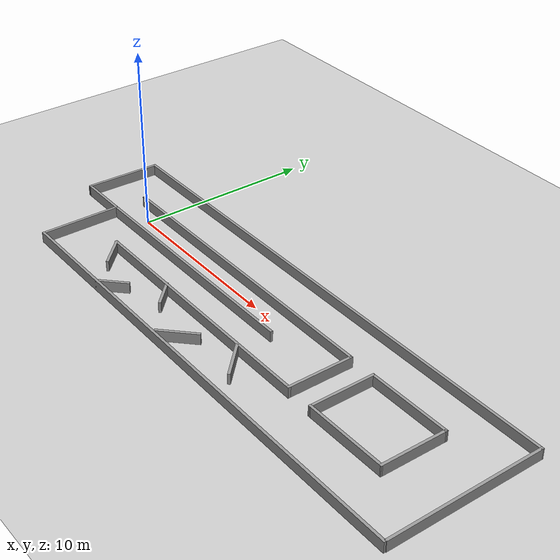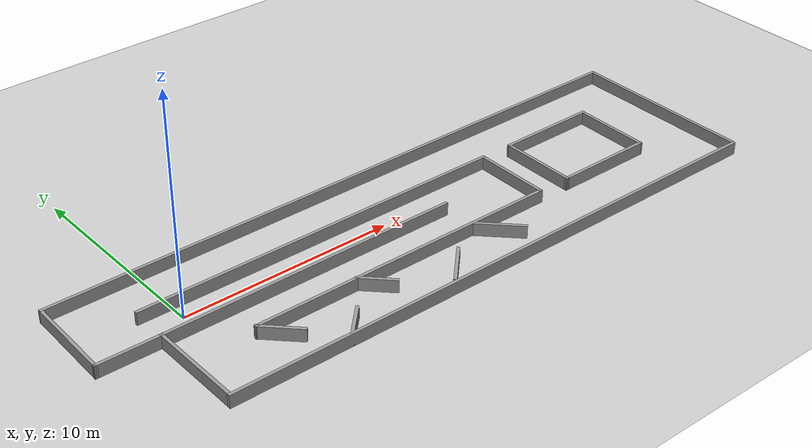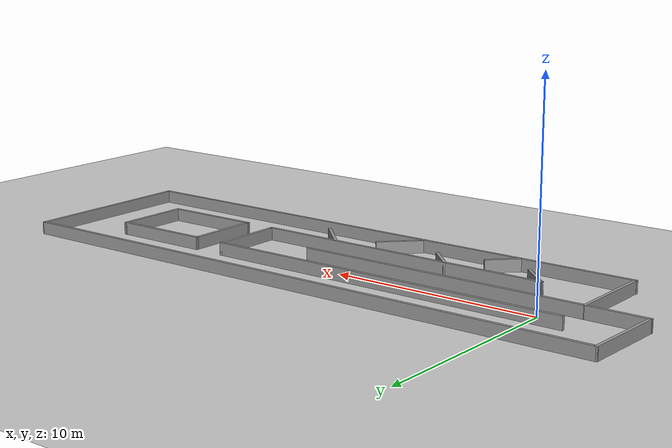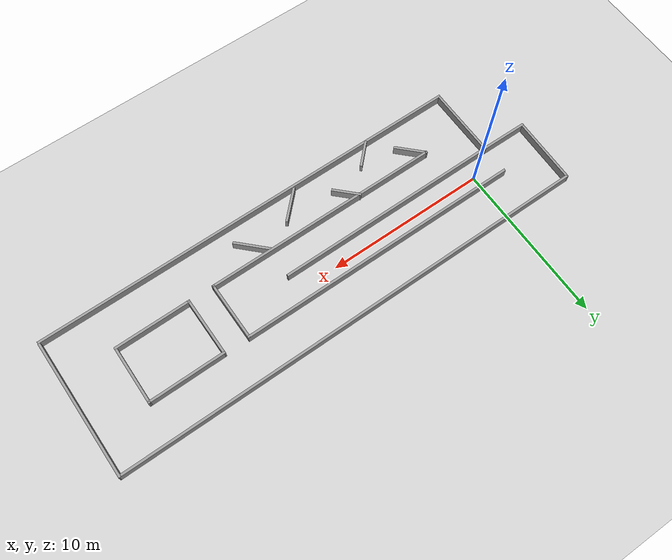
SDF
<sdf version="1.7">
 <world name="default">
  <light name="sun" type="directional">
   <pose>0 0 10 0 -0 0</pose>
   <diffuse>0.8 0.8 0.8 1</diffuse>
   <specular>0.2 0.2 0.2 1</specular>
   <attenuation>
    <range>1000</range>
    <constant>0.9</constant>
    <linear>0.01</linear>
    <quadratic>0.001</quadratic>
   </attenuation>
   <direction>-0.5 0.1 -0.9</direction>
   <spot><inner_angle>0</inner_angle><outer_angle>0</outer_angle><falloff>0</falloff></spot>
  </light>
  <model name="ground_plane">
   <static>1</static>
   <link name="link">
    <collision name="collision">
     <geometry><plane><normal>0 0 1</normal><size>100 100</size></plane></geometry>
     <surface><friction><ode><mu>100</mu><mu2>50</mu2></ode></friction></surface>
    </collision>
    <visual name="visual">
     <cast_shadows>0</cast_shadows>
     <geometry><plane><normal>0 0 1</normal><size>100 100</size></plane></geometry>
     <material>
      <script><uri>file://media/materials/scripts/gazebo.material</uri><name>Gazebo/Grey</name></script>
     </material>
    </visual>
   </link>
  </model>
  <gravity>0 0 -9.8</gravity>
  <magnetic_field>6e-06 2.3e-05 -4.2e-05</magnetic_field>
  <atmosphere type="adiabatic"/>
  <physics type="ode">
   <max_step_size>0.001</max_step_size>
   <real_time_factor>1</real_time_factor>
   <real_time_update_rate>1000</real_time_update_rate>
  </physics>
  <scene><ambient>0.4 0.4 0.4 1</ambient><background>0.7 0.7 0.7 1</background><shadows>1</shadows></scene>
  <audio><device>default</device></audio>
  <spherical_coordinates>
   <surface_model>EARTH_WGS84</surface_model>
   <latitude_deg>0</latitude_deg>
   <longitude_deg>0</longitude_deg>
   <elevation>0</elevation>
   <heading_deg>0</heading_deg>
  </spherical_coordinates>
  <model name="maze1">
   <pose>10.6768 -1.12179 0 0 -0 0</pose>
   <link name="Wall_19">
    <collision name="Wall_19_Collision">
     <geometry><box><size>18 0.15 0.6</size></box></geometry>
     <pose>0 0 0.3 0 -0 0</pose>
    </collision>
    <visual name="Wall_19_Visual">
     <pose>0 0 0.3 0 -0 0</pose>
     <geometry><box><size>18 0.15 0.6</size></box></geometry>
     <material>
      <script><uri>file://media/materials/scripts/gazebo.material</uri><name>Gazebo/Grey</name></script>
      <ambient>1 1 1 1</ambient>
     </material>
     <meta><layer>0</layer></meta>
    </visual>
    <pose>-3.3016 1.8989 0 0 -0 0</pose>
   </link>
   <link name="Wall_20">
    <collision name="Wall_20_Collision">
     <geometry><box><size>3.75 0.15 0.6</size></box></geometry>
     <pose>0 0 0.3 0 -0 0</pose>
    </collision>
    <visual name="Wall_20_Visual">
     <pose>0 0 0.3 0 -0 0</pose>
     <geometry><box><size>3.75 0.15 0.6</size></box></geometry>
     <material>
      <script><uri>file://media/materials/scripts/gazebo.material</uri><name>Gazebo/Grey</name></script>
      <ambient>1 1 1 1</ambient>
     </material>
     <meta><layer>0</layer></meta>
    </visual>
    <pose>5.6234 0.098897 0 0 -0 -1.5708</pose>
   </link>
   <link name="Wall_21">
    <collision name="Wall_21_Collision">
     <geometry><box><size>15 0.15 0.6</size></box></geometry>
     <pose>0 0 0.3 0 -0 0</pose>
    </collision>
    <visual name="Wall_21_Visual">
     <pose>0 0 0.3 0 -0 0</pose>
     <geometry><box><size>15 0.15 0.6</size></box></geometry>
     <material>
      <script><uri>file://media/materials/scripts/gazebo.material</uri><name>Gazebo/Grey</name></script>
      <ambient>1 1 1 1</ambient>
     </material>
     <meta><layer>0</layer></meta>
    </visual>
    <pose>-1.8016 -1.7011 0 0 -0 3.14159</pose>
   </link>
   <link name="Wall_23">
    <collision name="Wall_23_Collision">
     <geometry><box><size>14.25 0.15 0.6</size></box></geometry>
     <pose>0 0 0.3 0 -0 0</pose>
    </collision>
    <visual name="Wall_23_Visual">
     <pose>0 0 0.3 0 -0 0</pose>
     <geometry><box><size>14.25 0.15 0.6</size></box></geometry>
     <material>
      <script><uri>file://media/materials/scripts/gazebo.material</uri><name>Gazebo/Grey</name></script>
      <ambient>1 1 1 1</ambient>
     </material>
     <meta><layer>0</layer></meta>
    </visual>
    <pose>-5.2096 0.116397 0 0 -0 -3.13911</pose>
   </link>
   <link name="Wall_25">
    <collision name="Wall_25_Collision">
     <geometry><box><size>4.48207 0.15 0.6</size></box></geometry>
     <pose>0 0 0.3 0 -0 0</pose>
    </collision>
    <visual name="Wall_25_Visual">
     <pose>0 0 0.3 0 -0 0</pose>
     <geometry><box><size>4.48207 0.15 0.6</size></box></geometry>
     <material>
      <script><uri>file://media/materials/scripts/gazebo.material</uri><name>Gazebo/Grey</name></script>
      <ambient>1 1 1 1</ambient>
     </material>
     <meta><layer>0</layer></meta>
    </visual>
    <pose>-12.2596 -2.0671 0 0 -0 -1.5708</pose>
   </link>
   <link name="Wall_29">
    <collision name="Wall_29_Collision">
     <geometry><box><size>2 0.15 0.6</size></box></geometry>
     <pose>0 0 0.3 0 -0 0</pose>
    </collision>
    <visual name="Wall_29_Visual">
     <pose>0 0 0.3 0 -0 0</pose>
     <geometry><box><size>2 0.15 0.6</size></box></geometry>
     <material>
      <script><uri>file://media/materials/scripts/gazebo.material</uri><name>Gazebo/Grey</name></script>
      <ambient>1 1 1 1</ambient>
     </material>
     <meta><layer>0</layer></meta>
    </visual>
    <pose>-8.5726 -2.3556 0 0 -0 2.35581</pose>
   </link>
   <link name="Wall_31">
    <collision name="Wall_31_Collision">
     <geometry><box><size>27.5 0.15 0.6</size></box></geometry>
     <pose>0 0 0.3 0 -0 0</pose>
    </collision>
    <visual name="Wall_31_Visual">
     <pose>0 0 0.3 0 -0 0</pose>
     <geometry><box><size>27.5 0.15 0.6</size></box></geometry>
     <material>
      <script><uri>file://media/materials/scripts/gazebo.material</uri><name>Gazebo/Grey</name></script>
      <ambient>1 1 1 1</ambient>
     </material>
     <meta><layer>0</layer></meta>
    </visual>
    <pose>1.4094 -4.3511 0 0 -0 3.14159</pose>
   </link>
   <link name="Wall_33">
    <collision name="Wall_33_Collision">
     <geometry><box><size>1.75 0.15 0.6</size></box></geometry>
     <pose>0 0 0.3 0 -0 0</pose>
    </collision>
    <visual name="Wall_33_Visual">
     <pose>0 0 0.3 0 -0 0</pose>
     <geometry><box><size>1.75 0.15 0.6</size></box></geometry>
     <material>
      <script><uri>file://media/materials/scripts/gazebo.material</uri><name>Gazebo/Grey</name></script>
      <ambient>1 1 1 1</ambient>
     </material>
     <meta><layer>0</layer></meta>
    </visual>
    <pose>-6.1476 -3.7596 0 0 -0 -2.35664</pose>
   </link>
   <link name="Wall_35">
    <collision name="Wall_35_Collision">
     <geometry><box><size>1.75 0.15 0.6</size></box></geometry>
     <pose>0 0 0.3 0 -0 0</pose>
    </collision>
    <visual name="Wall_35_Visual">
     <pose>0 0 0.3 0 -0 0</pose>
     <geometry><box><size>1.75 0.15 0.6</size></box></geometry>
     <material>
      <script><uri>file://media/materials/scripts/gazebo.material</uri><name>Gazebo/Grey</name></script>
      <ambient>1 1 1 1</ambient>
     </material>
     <meta><layer>0</layer></meta>
    </visual>
    <pose>-3.8241 -2.2451 0 0 -0 2.35575</pose>
   </link>
   <link name="Wall_37">
    <collision name="Wall_37_Collision">
     <geometry><box><size>2.25 0.15 0.6</size></box></geometry>
     <pose>0 0 0.3 0 -0 0</pose>
    </collision>
    <visual name="Wall_37_Visual">
     <pose>0 0 0.3 0 -0 0</pose>
     <geometry><box><size>2.25 0.15 0.6</size></box></geometry>
     <material>
      <script><uri>file://media/materials/scripts/gazebo.material</uri><name>Gazebo/Grey</name></script>
      <ambient>1 1 1 1</ambient>
     </material>
     <meta><layer>0</layer></meta>
    </visual>
    <pose>-0.712097 -3.4486 0 0 -0 -2.35619</pose>
   </link>
   <link name="Wall_39">
    <collision name="Wall_39_Collision">
     <geometry><box><size>2.25 0.15 0.6</size></box></geometry>
     <pose>0 0 0.3 0 -0 0</pose>
    </collision>
    <visual name="Wall_39_Visual">
     <pose>0 0 0.3 0 -0 0</pose>
     <geometry><box><size>2.25 0.15 0.6</size></box></geometry>
     <material>
      <script><uri>file://media/materials/scripts/gazebo.material</uri><name>Gazebo/Grey</name></script>
      <ambient>1 1 1 1</ambient>
     </material>
     <meta><layer>0</layer></meta>
    </visual>
    <pose>2.5239 -2.5286 0 0 -0 2.35619</pose>
   </link>
   <link name="Wall_42">
    <collision name="Wall_42_Collision">
     <geometry><box><size>8.75 0.15 0.6</size></box></geometry>
     <pose>0 0 0.3 0 -0 0</pose>
    </collision>
    <visual name="Wall_42_Visual">
     <pose>0 0 0.3 0 -0 0</pose>
     <geometry><box><size>8.75 0.15 0.6</size></box></geometry>
     <material>
      <script><uri>file://media/materials/scripts/gazebo.material</uri><name>Gazebo/Grey</name></script>
      <ambient>1 1 1 1</ambient>
     </material>
     <meta><layer>0</layer></meta>
    </visual>
    <pose>15.0984 0.055897 0 0 -0 1.57382</pose>
   </link>
   <link name="Wall_44">
    <collision name="Wall_44_Collision">
     <geometry><box><size>30.23 0.15 0.6</size></box></geometry>
     <pose>0 0 0.3 0 -0 0</pose>
    </collision>
    <visual name="Wall_44_Visual">
     <pose>0 0 0.3 0 -0 0</pose>
     <geometry><box><size>30.23 0.15 0.6</size></box></geometry>
     <material>
      <script><uri>file://media/materials/scripts/gazebo.material</uri><name>Gazebo/Grey</name></script>
      <ambient>1 1 1 1</ambient>
     </material>
     <meta><layer>0</layer></meta>
    </visual>
    <pose>0.045403 4.3294 0 0 -0 -3.13983</pose>
   </link>
   <link name="Wall_46">
    <collision name="Wall_46_Collision">
     <geometry><box><size>3.75 0.15 0.6</size></box></geometry>
     <pose>0 0 0.3 0 -0 0</pose>
    </collision>
    <visual name="Wall_46_Visual">
     <pose>0 0 0.3 0 -0 0</pose>
     <geometry><box><size>3.75 0.15 0.6</size></box></geometry>
     <material>
      <script><uri>file://media/materials/scripts/gazebo.material</uri><name>Gazebo/Grey</name></script>
      <ambient>1 1 1 1</ambient>
     </material>
     <meta><layer>0</layer></meta>
    </visual>
    <pose>7.2104 0.082897 0 0 -0 1.5708</pose>
   </link>
   <link name="Wall_48">
    <collision name="Wall_48_Collision">
     <geometry><box><size>4.83029 0.15 0.6</size></box></geometry>
     <pose>0 0 0.3 0 -0 0</pose>
    </collision>
    <visual name="Wall_48_Visual">
     <pose>0 0 0.3 0 -0 0</pose>
     <geometry><box><size>4.83029 0.15 0.6</size></box></geometry>
     <material>
      <script><uri>file://media/materials/scripts/gazebo.material</uri><name>Gazebo/Grey</name></script>
      <ambient>1 1 1 1</ambient>
     </material>
     <meta><layer>0</layer></meta>
    </visual>
    <pose>9.5504 1.8964 0 0 -0 0.005769</pose>
   </link>
   <link name="Wall_49">
    <collision name="Wall_49_Collision">
     <geometry><box><size>3.75 0.15 0.6</size></box></geometry>
     <pose>0 0 0.3 0 -0 0</pose>
    </collision>
    <visual name="Wall_49_Visual">
     <pose>0 0 0.3 0 -0 0</pose>
     <geometry><box><size>3.75 0.15 0.6</size></box></geometry>
     <material>
      <script><uri>file://media/materials/scripts/gazebo.material</uri><name>Gazebo/Grey</name></script>
      <ambient>1 1 1 1</ambient>
     </material>
     <meta><layer>0</layer></meta>
    </visual>
    <pose>11.8769 0.109897 0 0 -0 -1.5783</pose>
   </link>
   <link name="Wall_50">
    <collision name="Wall_50_Collision">
     <geometry><box><size>4.80333 0.15 0.6</size></box></geometry>
     <pose>0 0 0.3 0 -0 0</pose>
    </collision>
    <visual name="Wall_50_Visual">
     <pose>0 0 0.3 0 -0 0</pose>
     <geometry><box><size>4.80333 0.15 0.6</size></box></geometry>
     <material>
      <script><uri>file://media/materials/scripts/gazebo.material</uri><name>Gazebo/Grey</name></script>
      <ambient>1 1 1 1</ambient>
     </material>
     <meta><layer>0</layer></meta>
    </visual>
    <pose>9.5369 -1.7036 0 0 -0 -3.13579</pose>
   </link>
   <link name="Wall_52">
    <collision name="Wall_52_Collision">
     <geometry><box><size>4.33758 0.15 0.6</size></box></geometry>
     <pose>0 0 0.3 0 -0 0</pose>
    </collision>
    <visual name="Wall_52_Visual">
     <pose>0 0 0.3 0 -0 0</pose>
     <geometry><box><size>4.33758 0.15 0.6</size></box></geometry>
     <material>
      <script><uri>file://media/materials/scripts/gazebo.material</uri><name>Gazebo/Grey</name></script>
      <ambient>1 1 1 1</ambient>
     </material>
     <meta><layer>0</layer></meta>
    </visual>
    <pose>-15.0521 2.2099 0 0 -0 -1.59826</pose>
   </link>
   <link name="Wall_53">
    <collision name="Wall_53_Collision">
     <geometry><box><size>3.00006 0.15 0.6</size></box></geometry>
     <pose>0 0 0.3 0 -0 0</pose>
    </collision>
    <visual name="Wall_53_Visual">
     <pose>0 0 0.3 0 -0 0</pose>
     <geometry><box><size>3.00006 0.15 0.6</size></box></geometry>
     <material>
      <script><uri>file://media/materials/scripts/gazebo.material</uri><name>Gazebo/Grey</name></script>
      <ambient>1 1 1 1</ambient>
     </material>
     <meta><layer>0</layer></meta>
    </visual>
    <pose>-13.6846 0.107897 0 0 -0 -0.006316</pose>
   </link>
   <static>1</static>
  </model>
 </world>
</sdf>
